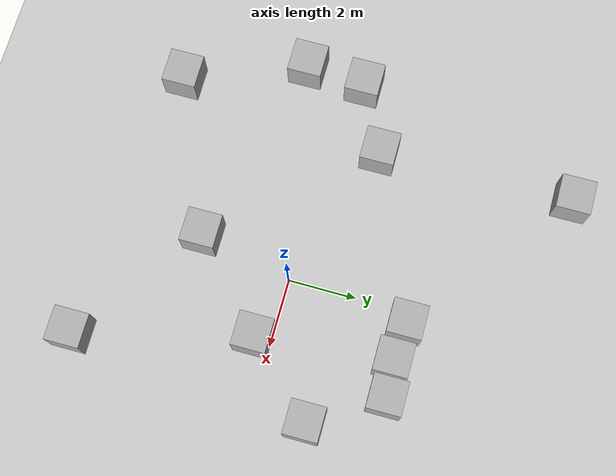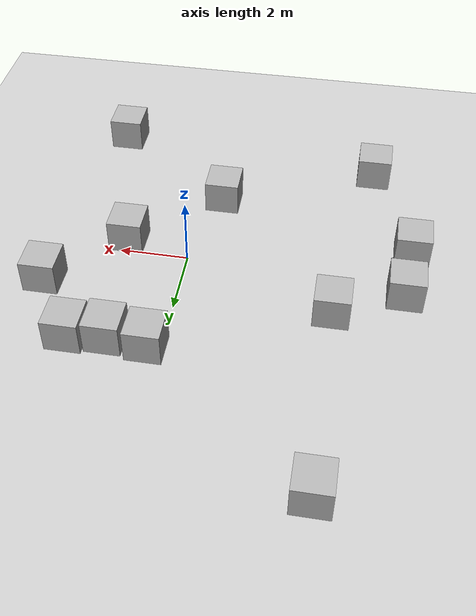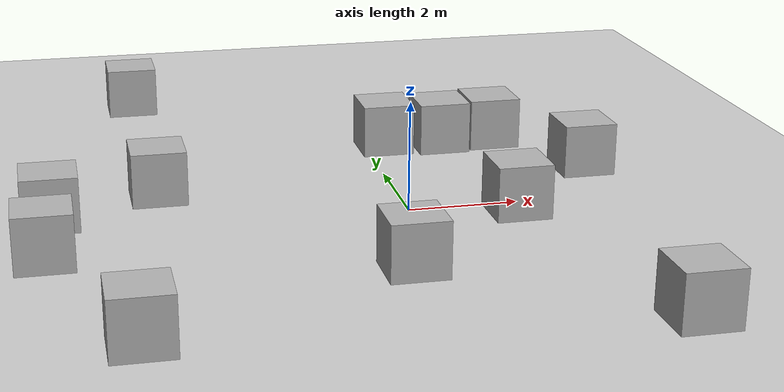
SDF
<sdf version='1.10'>
  <world name='empty'>
    <physics name='1ms' type='ignored'>
      <max_step_size>0.001</max_step_size>
      <real_time_factor>1</real_time_factor>
      <real_time_update_rate>1000</real_time_update_rate>
    </physics>
    <plugin name='gz::sim::systems::Physics' filename='gz-sim-physics-system'/>
    <plugin name='gz::sim::systems::UserCommands' filename='gz-sim-user-commands-system'/>
    <plugin name='gz::sim::systems::SceneBroadcaster' filename='gz-sim-scene-broadcaster-system'/>
    <plugin name='gz::sim::systems::Contact' filename='gz-sim-contact-system'/>
    <gravity>0 0 -9.8000000000000007</gravity>
    <magnetic_field>5.5644999999999998e-06 2.2875799999999999e-05 -4.2388400000000002e-05</magnetic_field>
    <atmosphere type='adiabatic'/>
    <scene>
      <ambient>0.400000006 0.400000006 0.400000006 1</ambient>
      <background>0.699999988 0.699999988 0.699999988 1</background>
      <shadows>true</shadows>
    </scene>
    <model name='ground_plane'>
      <static>true</static>
      <link name='link'>
        <collision name='collision'>
          <geometry>
            <plane>
              <normal>0 0 1</normal>
              <size>100 100</size>
            </plane>
          </geometry>
          <surface>
            <friction>
              <ode/>
            </friction>
            <bounce/>
            <contact/>
          </surface>
        </collision>
        <visual name='visual'>
          <geometry>
            <plane>
              <normal>0 0 1</normal>
              <size>100 100</size>
            </plane>
          </geometry>
          <material>
            <ambient>0.800000012 0.800000012 0.800000012 1</ambient>
            <diffuse>0.800000012 0.800000012 0.800000012 1</diffuse>
            <specular>0.800000012 0.800000012 0.800000012 1</specular>
          </material>
        </visual>
        <pose>0 0 0 0 0 0</pose>
        <inertial>
          <pose>0 0 0 0 0 0</pose>
          <mass>1</mass>
          <inertia>
            <ixx>1</ixx>
            <ixy>0</ixy>
            <ixz>0</ixz>
            <iyy>1</iyy>
            <iyz>0</iyz>
            <izz>1</izz>
          </inertia>
        </inertial>
        <enable_wind>false</enable_wind>
      </link>
      <pose>0 0 0 0 0 0</pose>
      <self_collide>false</self_collide>
    </model>
    <model name='box'>
      <pose>1.4830307953597552 3.4488525290699634 0.5 0 0 0</pose>
      <link name='box_link'>
        <inertial>
          <inertia>
            <ixx>0.16666</ixx>
            <ixy>0</ixy>
            <ixz>0</ixz>
            <iyy>0.16666</iyy>
            <iyz>0</iyz>
            <izz>0.16666</izz>
          </inertia>
          <mass>1</mass>
          <pose>0 0 0 0 0 0</pose>
        </inertial>
        <collision name='box_collision'>
          <geometry>
            <box>
              <size>1 1 1</size>
            </box>
          </geometry>
          <surface>
            <friction>
              <ode/>
            </friction>
            <bounce/>
            <contact/>
          </surface>
        </collision>
        <visual name='box_visual'>
          <geometry>
            <box>
              <size>1 1 1</size>
            </box>
          </geometry>
          <material>
            <ambient>0.300000012 0.300000012 0.300000012 1</ambient>
            <diffuse>0.699999988 0.699999988 0.699999988 1</diffuse>
            <specular>1 1 1 1</specular>
          </material>
        </visual>
        <pose>0 0 0 0 0 0</pose>
        <enable_wind>false</enable_wind>
      </link>
      <static>false</static>
      <self_collide>false</self_collide>
    </model>
    <model name='box_0'>
      <pose>2.5358263675780108 3.5374187864757056 0.5 0 0 0</pose>
      <link name='box_link'>
        <inertial>
          <inertia>
            <ixx>0.16666</ixx>
            <ixy>0</ixy>
            <ixz>0</ixz>
            <iyy>0.16666</iyy>
            <iyz>0</iyz>
            <izz>0.16666</izz>
          </inertia>
          <mass>1</mass>
          <pose>0 0 0 0 0 0</pose>
        </inertial>
        <collision name='box_collision'>
          <geometry>
            <box>
              <size>1 1 1</size>
            </box>
          </geometry>
          <surface>
            <friction>
              <ode/>
            </friction>
            <bounce/>
            <contact/>
          </surface>
        </collision>
        <visual name='box_visual'>
          <geometry>
            <box>
              <size>1 1 1</size>
            </box>
          </geometry>
          <material>
            <ambient>0.300000012 0.300000012 0.300000012 1</ambient>
            <diffuse>0.699999988 0.699999988 0.699999988 1</diffuse>
            <specular>1 1 1 1</specular>
          </material>
        </visual>
        <pose>0 0 0 0 0 0</pose>
        <enable_wind>false</enable_wind>
      </link>
      <static>false</static>
      <self_collide>false</self_collide>
    </model>
    <model name='box_1'>
      <pose>3.7998755997424647 1.5443785115103055 0.5 0 0 0</pose>
      <link name='box_link'>
        <inertial>
          <inertia>
            <ixx>0.16666</ixx>
            <ixy>0</ixy>
            <ixz>0</ixz>
            <iyy>0.16666</iyy>
            <iyz>0</iyz>
            <izz>0.16666</izz>
          </inertia>
          <mass>1</mass>
          <pose>0 0 0 0 0 0</pose>
        </inertial>
        <collision name='box_collision'>
          <geometry>
            <box>
              <size>1 1 1</size>
            </box>
          </geometry>
          <surface>
            <friction>
              <ode/>
            </friction>
            <bounce/>
            <contact/>
          </surface>
        </collision>
        <visual name='box_visual'>
          <geometry>
            <box>
              <size>1 1 1</size>
            </box>
          </geometry>
          <material>
            <ambient>0.300000012 0.300000012 0.300000012 1</ambient>
            <diffuse>0.699999988 0.699999988 0.699999988 1</diffuse>
            <specular>1 1 1 1</specular>
          </material>
        </visual>
        <pose>0 0 0 0 0 0</pose>
        <enable_wind>false</enable_wind>
      </link>
      <static>false</static>
      <self_collide>false</self_collide>
    </model>
    <model name='box_2'>
      <pose>0.36716998642874593 3.554905678260539 0.5 0 0 0</pose>
      <link name='box_link'>
        <inertial>
          <inertia>
            <ixx>0.16666</ixx>
            <ixy>0</ixy>
            <ixz>0</ixz>
            <iyy>0.16666</iyy>
            <iyz>0</iyz>
            <izz>0.16666</izz>
          </inertia>
          <mass>1</mass>
          <pose>0 0 0 0 0 0</pose>
        </inertial>
        <collision name='box_collision'>
          <geometry>
            <box>
              <size>1 1 1</size>
            </box>
          </geometry>
          <surface>
            <friction>
              <ode/>
            </friction>
            <bounce/>
            <contact/>
          </surface>
        </collision>
        <visual name='box_visual'>
          <geometry>
            <box>
              <size>1 1 1</size>
            </box>
          </geometry>
          <material>
            <ambient>0.300000012 0.300000012 0.300000012 1</ambient>
            <diffuse>0.699999988 0.699999988 0.699999988 1</diffuse>
            <specular>1 1 1 1</specular>
          </material>
        </visual>
        <pose>0 0 0 0 0 0</pose>
        <enable_wind>false</enable_wind>
      </link>
      <static>false</static>
      <self_collide>false</self_collide>
    </model>
    <model name='box_3'>
      <pose>1.8515284890090027 -0.48680344783542751 0.5 0 0 0</pose>
      <link name='box_link'>
        <inertial>
          <inertia>
            <ixx>0.16666</ixx>
            <ixy>0</ixy>
            <ixz>0</ixz>
            <iyy>0.16666</iyy>
            <iyz>0</iyz>
            <izz>0.16666</izz>
          </inertia>
          <mass>1</mass>
          <pose>0 0 0 0 0 0</pose>
        </inertial>
        <collision name='box_collision'>
          <geometry>
            <box>
              <size>1 1 1</size>
            </box>
          </geometry>
          <surface>
            <friction>
              <ode/>
            </friction>
            <bounce/>
            <contact/>
          </surface>
        </collision>
        <visual name='box_visual'>
          <geometry>
            <box>
              <size>1 1 1</size>
            </box>
          </geometry>
          <material>
            <ambient>0.300000012 0.300000012 0.300000012 1</ambient>
            <diffuse>0.699999988 0.699999988 0.699999988 1</diffuse>
            <specular>1 1 1 1</specular>
          </material>
        </visual>
        <pose>0 0 0 0 0 0</pose>
        <enable_wind>false</enable_wind>
      </link>
      <static>false</static>
      <self_collide>false</self_collide>
    </model>
    <model name='box_4'>
      <pose>-4.329233910418905 1.5489681424794501 0.5 0 0 0</pose>
      <link name='box_link'>
        <inertial>
          <inertia>
            <ixx>0.16666</ixx>
            <ixy>0</ixy>
            <ixz>0</ixz>
            <iyy>0.16666</iyy>
            <iyz>0</iyz>
            <izz>0.16666</izz>
          </inertia>
          <mass>1</mass>
          <pose>0 0 0 0 0 0</pose>
        </inertial>
        <collision name='box_collision'>
          <geometry>
            <box>
              <size>1 1 1</size>
            </box>
          </geometry>
          <surface>
            <friction>
              <ode/>
            </friction>
            <bounce/>
            <contact/>
          </surface>
        </collision>
        <visual name='box_visual'>
          <geometry>
            <box>
              <size>1 1 1</size>
            </box>
          </geometry>
          <material>
            <ambient>0.300000012 0.300000012 0.300000012 1</ambient>
            <diffuse>0.699999988 0.699999988 0.699999988 1</diffuse>
            <specular>1 1 1 1</specular>
          </material>
        </visual>
        <pose>0 0 0 0 0 0</pose>
        <enable_wind>false</enable_wind>
      </link>
      <static>false</static>
      <self_collide>false</self_collide>
    </model>
    <model name='box_5'>
      <pose>-4.3816572722313829 7.3031376006010067 0.5 0 0 0</pose>
      <link name='box_link'>
        <inertial>
          <inertia>
            <ixx>0.16666</ixx>
            <ixy>0</ixy>
            <ixz>0</ixz>
            <iyy>0.16666</iyy>
            <iyz>0</iyz>
            <izz>0.16666</izz>
          </inertia>
          <mass>1</mass>
          <pose>0 0 0 0 0 0</pose>
        </inertial>
        <collision name='box_collision'>
          <geometry>
            <box>
              <size>1 1 1</size>
            </box>
          </geometry>
          <surface>
            <friction>
              <ode/>
            </friction>
            <bounce/>
            <contact/>
          </surface>
        </collision>
        <visual name='box_visual'>
          <geometry>
            <box>
              <size>1 1 1</size>
            </box>
          </geometry>
          <material>
            <ambient>0.300000012 0.300000012 0.300000012 1</ambient>
            <diffuse>0.699999988 0.699999988 0.699999988 1</diffuse>
            <specular>1 1 1 1</specular>
          </material>
        </visual>
        <pose>0 0 0 0 0 0</pose>
        <enable_wind>false</enable_wind>
      </link>
      <static>false</static>
      <self_collide>false</self_collide>
    </model>
    <model name='box_6'>
      <pose>-0.61749262206867706 -2.7270940753529445 0.5 0 0 0</pose>
      <link name='box_link'>
        <inertial>
          <inertia>
            <ixx>0.16666</ixx>
            <ixy>0</ixy>
            <ixz>0</ixz>
            <iyy>0.16666</iyy>
            <iyz>0</iyz>
            <izz>0.16666</izz>
          </inertia>
          <mass>1</mass>
          <pose>0 0 0 0 0 0</pose>
        </inertial>
        <collision name='box_collision'>
          <geometry>
            <box>
              <size>1 1 1</size>
            </box>
          </geometry>
          <surface>
            <friction>
              <ode/>
            </friction>
            <bounce/>
            <contact/>
          </surface>
        </collision>
        <visual name='box_visual'>
          <geometry>
            <box>
              <size>1 1 1</size>
            </box>
          </geometry>
          <material>
            <ambient>0.300000012 0.300000012 0.300000012 1</ambient>
            <diffuse>0.699999988 0.699999988 0.699999988 1</diffuse>
            <specular>1 1 1 1</specular>
          </material>
        </visual>
        <pose>0 0 0 0 0 0</pose>
        <enable_wind>false</enable_wind>
      </link>
      <static>false</static>
      <self_collide>false</self_collide>
    </model>
    <model name='box_7'>
      <pose>3.0660042148210547 -5.457474156891065 0.5 0 0 0</pose>
      <link name='box_link'>
        <inertial>
          <inertia>
            <ixx>0.16666</ixx>
            <ixy>0</ixy>
            <ixz>0</ixz>
            <iyy>0.16666</iyy>
            <iyz>0</iyz>
            <izz>0.16666</izz>
          </inertia>
          <mass>1</mass>
          <pose>0 0 0 0 0 0</pose>
        </inertial>
        <collision name='box_collision'>
          <geometry>
            <box>
              <size>1 1 1</size>
            </box>
          </geometry>
          <surface>
            <friction>
              <ode/>
            </friction>
            <bounce/>
            <contact/>
          </surface>
        </collision>
        <visual name='box_visual'>
          <geometry>
            <box>
              <size>1 1 1</size>
            </box>
          </geometry>
          <material>
            <ambient>0.300000012 0.300000012 0.300000012 1</ambient>
            <diffuse>0.699999988 0.699999988 0.699999988 1</diffuse>
            <specular>1 1 1 1</specular>
          </material>
        </visual>
        <pose>0 0 0 0 0 0</pose>
        <enable_wind>false</enable_wind>
      </link>
      <static>false</static>
      <self_collide>false</self_collide>
    </model>
    <model name='box_8'>
      <pose>-5.1305371302551768 -4.6596950718291952 0.5 0 0 0</pose>
      <link name='box_link'>
        <inertial>
          <inertia>
            <ixx>0.16666</ixx>
            <ixy>0</ixy>
            <ixz>0</ixz>
            <iyy>0.16666</iyy>
            <iyz>0</iyz>
            <izz>0.16666</izz>
          </inertia>
          <mass>1</mass>
          <pose>0 0 0 0 0 0</pose>
        </inertial>
        <collision name='box_collision'>
          <geometry>
            <box>
              <size>1 1 1</size>
            </box>
          </geometry>
          <surface>
            <friction>
              <ode/>
            </friction>
            <bounce/>
            <contact/>
          </surface>
        </collision>
        <visual name='box_visual'>
          <geometry>
            <box>
              <size>1 1 1</size>
            </box>
          </geometry>
          <material>
            <ambient>0.300000012 0.300000012 0.300000012 1</ambient>
            <diffuse>0.699999988 0.699999988 0.699999988 1</diffuse>
            <specular>1 1 1 1</specular>
          </material>
        </visual>
        <pose>0 0 0 0 0 0</pose>
        <enable_wind>false</enable_wind>
      </link>
      <static>false</static>
      <self_collide>false</self_collide>
    </model>
    <model name='box_9'>
      <pose>-6.4225368656530453 -1.1975654785536203 0.5 0 0 0</pose>
      <link name='box_link'>
        <inertial>
          <inertia>
            <ixx>0.16666</ixx>
            <ixy>0</ixy>
            <ixz>0</ixz>
            <iyy>0.16666</iyy>
            <iyz>0</iyz>
            <izz>0.16666</izz>
          </inertia>
          <mass>1</mass>
          <pose>0 0 0 0 0 0</pose>
        </inertial>
        <collision name='box_collision'>
          <geometry>
            <box>
              <size>1 1 1</size>
            </box>
          </geometry>
          <surface>
            <friction>
              <ode/>
            </friction>
            <bounce/>
            <contact/>
          </surface>
        </collision>
        <visual name='box_visual'>
          <geometry>
            <box>
              <size>1 1 1</size>
            </box>
          </geometry>
          <material>
            <ambient>0.300000012 0.300000012 0.300000012 1</ambient>
            <diffuse>0.699999988 0.699999988 0.699999988 1</diffuse>
            <specular>1 1 1 1</specular>
          </material>
        </visual>
        <pose>0 0 0 0 0 0</pose>
        <enable_wind>false</enable_wind>
      </link>
      <static>false</static>
      <self_collide>false</self_collide>
    </model>
    <model name='box_10'>
      <pose>-6.2820933803520962 0.57308522718149257 0.5 0 0 0</pose>
      <link name='box_link'>
        <inertial>
          <inertia>
            <ixx>0.16666</ixx>
            <ixy>0</ixy>
            <ixz>0</ixz>
            <iyy>0.16666</iyy>
            <iyz>0</iyz>
            <izz>0.16666</izz>
          </inertia>
          <mass>1</mass>
          <pose>0 0 0 0 0 0</pose>
        </inertial>
        <collision name='box_collision'>
          <geometry>
            <box>
              <size>1 1 1</size>
            </box>
          </geometry>
          <surface>
            <friction>
              <ode/>
            </friction>
            <bounce/>
            <contact/>
          </surface>
        </collision>
        <visual name='box_visual'>
          <geometry>
            <box>
              <size>1 1 1</size>
            </box>
          </geometry>
          <material>
            <ambient>0.300000012 0.300000012 0.300000012 1</ambient>
            <diffuse>0.699999988 0.699999988 0.699999988 1</diffuse>
            <specular>1 1 1 1</specular>
          </material>
        </visual>
        <pose>0 0 0 0 0 0</pose>
        <enable_wind>false</enable_wind>
      </link>
      <static>false</static>
      <self_collide>false</self_collide>
    </model>
    <light name='sun' type='directional'>
      <pose>0 0 10 0 0 0</pose>
      <cast_shadows>true</cast_shadows>
      <intensity>1</intensity>
      <direction>-0.5 0.10000000000000001 -0.90000000000000002</direction>
      <diffuse>0.800000012 0.800000012 0.800000012 1</diffuse>
      <specular>0.200000003 0.200000003 0.200000003 1</specular>
      <attenuation>
        <range>1000</range>
        <linear>0.01</linear>
        <constant>0.90000000000000002</constant>
        <quadratic>0.001</quadratic>
      </attenuation>
      <spot>
        <inner_angle>0</inner_angle>
        <outer_angle>0</outer_angle>
        <falloff>0</falloff>
      </spot>
    </light>
  </world>
</sdf>
